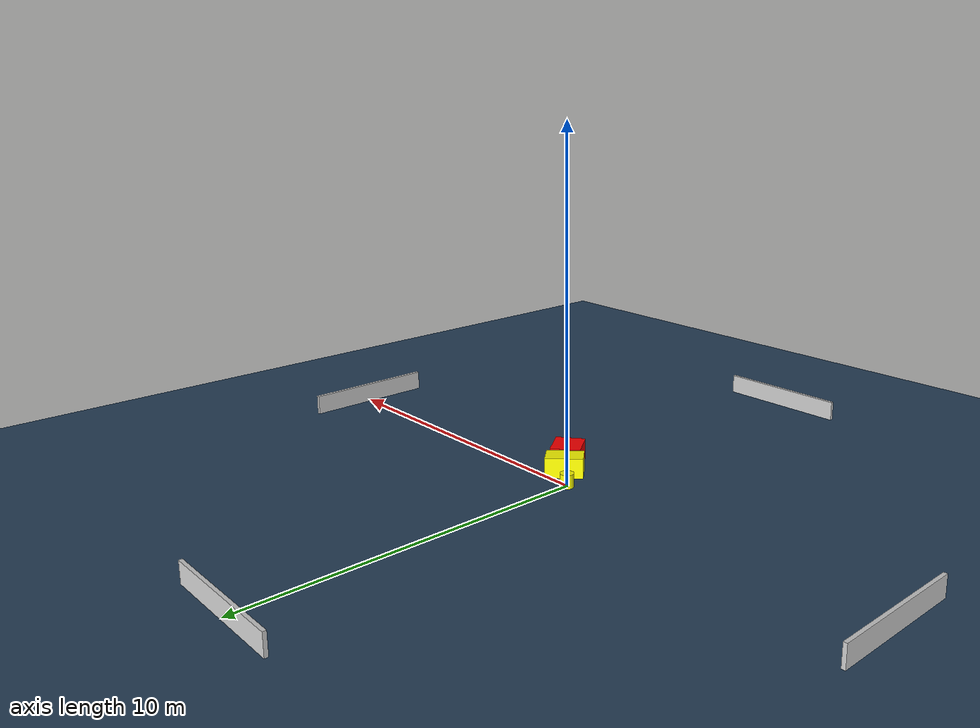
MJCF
<?xml version="1.0" ?>
<mujoco model="generated_environment">
  <option timestep="0.01" integrator="RK4" cone="elliptic"/>
  <default>
    <geom density="1"/>
  </default>
  <asset>
    <texture builtin="gradient" height="3072" name="skybox" rgb1="0.3 0.5 0.7" rgb2="0 0 0" type="skybox" width="512"/>
    <texture builtin="checker" height="300" name="groundplane" rgb1="0.2 0.3 0.4" rgb2="0.1 0.2 0.3" type="2d" width="300"/>
    <material name="groundplane" reflectance="0.2" texrepeat="5 5" texture="groundplane"/>
  </asset>
  <worldbody>
    <light dir="0 0 -1" directional="true" pos="0 0 1.5"/>
    <geom condim="3" friction="0.5 0.005 0.001" material="groundplane" name="floor" pos="0 0 0" size="0 0 0.05" type="plane"/>
    <body name="walls">
      <geom name="wall_1" condim="4" pos="-10.0 0.0 0.3" rgba="0.800000011920929 0.800000011920929 0.800000011920929 1.0" size="0.05 2.0 0.3" type="box"/>
      <geom name="wall_2" condim="4" pos="10.0 0.0 0.3" rgba="0.800000011920929 0.800000011920929 0.800000011920929 1.0" size="0.05 2.0 0.3" type="box"/>
      <geom name="wall_3" condim="4" pos="0.0 -10.0 0.3" rgba="0.800000011920929 0.800000011920929 0.800000011920929 1.0" size="2.0 0.05 0.3" type="box"/>
      <geom name="wall_4" condim="4" pos="0.0 10.0 0.3" rgba="0.800000011920929 0.800000011920929 0.800000011920929 1.0" size="2.0 0.05 0.3" type="box"/>
    </body>
    <body name="robot">
      <joint name="joint_x" type="slide" pos="0 0 0" axis="1 0 0"/>
      <joint name="joint_y" type="slide" pos="0 0 0" axis="0 1 0"/>
      <geom name="robot" type="cylinder" pos="0.0 0.0 0.2" size="0.2 0.2 0.0" mass="5.0" friction="1.0 0.005 0.0001" condim="4" rgba="1.0 1.0 0.0 1.0"/>
    </body>
    <body name="obstacle_1_movable">
      <geom name="obstacle_1_movable" condim="4" pos="0.6679251397419698 -0.5330123972620727 0.3" euler="0 0 223.00252510874458" friction="0.0 0.005 0.001" rgba="1.0 1.0 0.0 1.0" size="0.5457081019757613 0.31932342063608027 0.3" type="box" mass="0.1"/>
      <joint type="free"/>
    </body>
    <body name="obstacle_2_static">
      <geom name="obstacle_2_static" condim="4" pos="1.2286110692708319 -1.1837885485560915 0.3" euler="0 0 126.41385025798112" friction="0.0 0.005 0.001" rgba="1.0 0.0 0.0 1.0" size="0.4712528622919728 0.44204526558774526 0.3" type="box"/>
    </body>
  </worldbody>
  <actuator>
    <motor name="actuator_x" joint="joint_x" gear="1" ctrlrange="-1 1"/>
    <motor name="actuator_y" joint="joint_y" gear="1" ctrlrange="-1 1"/>
  </actuator>
</mujoco>
